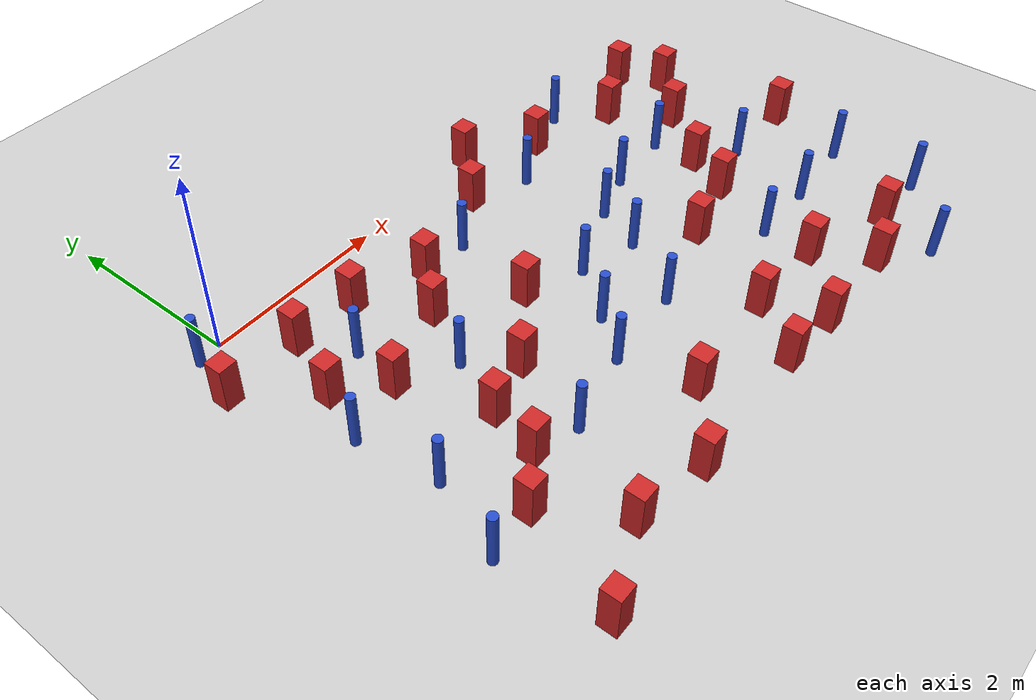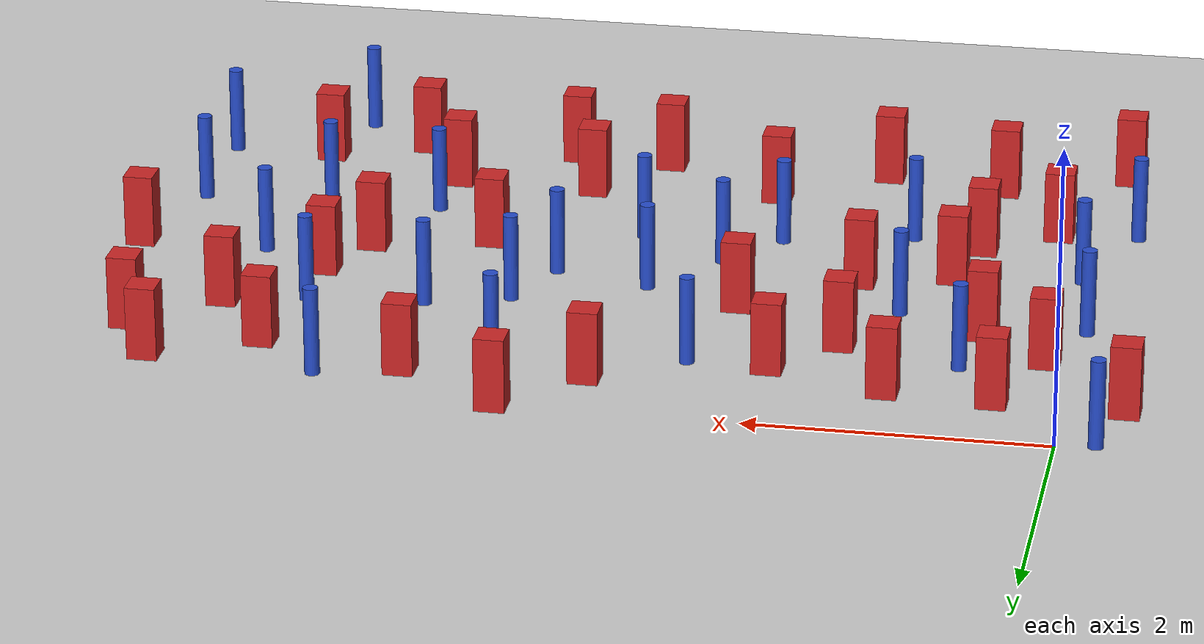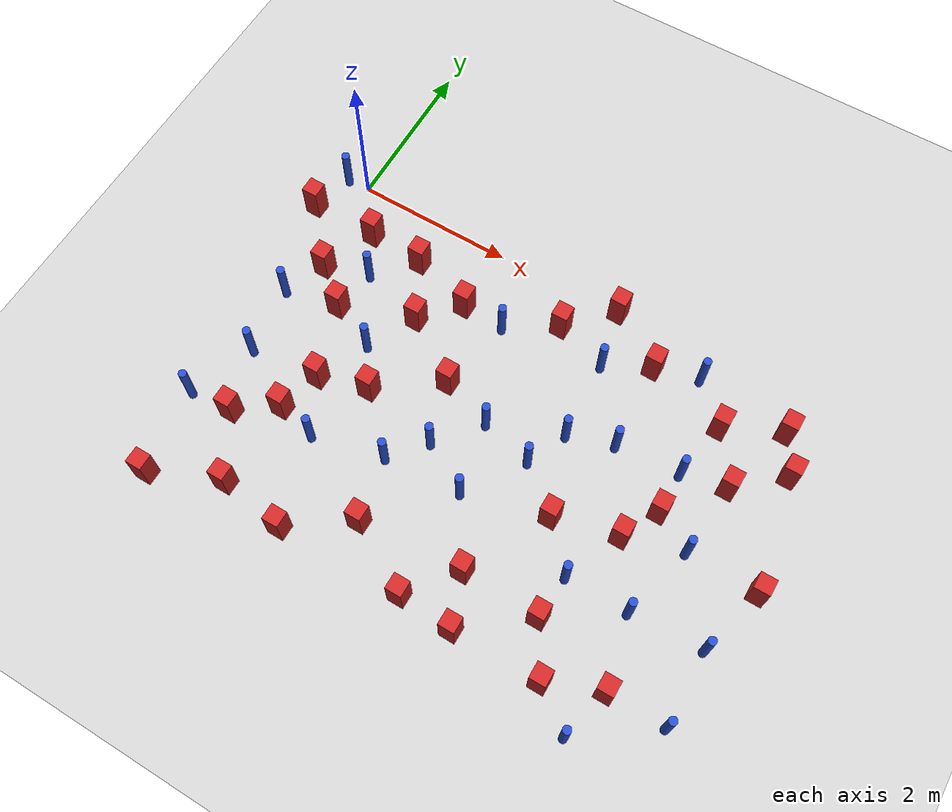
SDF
<sdf version="1.6">
 <world name="default">
  <model name="ground_plane">
   <static>1</static>
   <link name="link">
    <collision name="collision">
     <geometry><plane><normal>0 0 1</normal><size>100 100</size></plane></geometry>
     <surface><friction><ode><mu>100</mu><mu2>50</mu2></ode></friction></surface>
    </collision>
    <visual name="visual">
     <cast_shadows>0</cast_shadows>
     <geometry><plane><normal>0 0 1</normal><size>100 100</size></plane></geometry>
     <material>
      <ambient>1.0 1.0 1.0 1.0</ambient>
      <diffuse>0.8 0.8 0.8 1.0</diffuse>
      <specular>0.01 0.01 0.01 1.000000</specular>
     </material>
    </visual>
   </link>
  </model>
  <model name="NamedLocations">
   <static>true</static>
   <link name="DefaultStart"><pose>8.5 0 0 0 0 3.14</pose></link>
  </model>
  <model name="square_post_obstacle3">
   <static>true</static>
   <pose>4.13522312738 -2.65579902675 8.22691968438e-08 7.2212513382e-06 -7.54495500217e-07 2.29674213826e-05</pose>
   <link name="link">
    <pose>0 0 0.25 0 -0 0</pose>
    <inertial>
     <mass>100</mass>
     <inertia>
      <ixx>0.166667</ixx>
      <ixy>0</ixy>
      <ixz>0</ixz>
      <iyy>0.166667</iyy>
      <iyz>0</iyz>
      <izz>0.166667</izz>
     </inertia>
    </inertial>
    <collision name="collision"><geometry><box><size>.2 .2 .5</size></box></geometry></collision>
    <visual name="visual">
     <geometry><box><size>.2 .2 .5</size></box></geometry>
     <material>
      <script><name>Gazebo/Red</name><uri>file://media/materials/scripts/gazebo.material</uri></script>
     </material>
    </visual>
   </link>
  </model>
  <model name="square_post_obstacle15">
   <static>true</static>
   <pose>3.59028391547 0.0141733033644 8.22691968438e-08 7.22125133819e-06 -7.54495500217e-07 2.29674213826e-05</pose>
   <link name="link">
    <pose>0 0 0.25 0 -0 0</pose>
    <inertial>
     <mass>100</mass>
     <inertia>
      <ixx>0.166667</ixx>
      <ixy>0</ixy>
      <ixz>0</ixz>
      <iyy>0.166667</iyy>
      <iyz>0</iyz>
      <izz>0.166667</izz>
     </inertia>
    </inertial>
    <collision name="collision"><geometry><box><size>.2 .2 .5</size></box></geometry></collision>
    <visual name="visual">
     <geometry><box><size>.2 .2 .5</size></box></geometry>
     <material>
      <script><name>Gazebo/Red</name><uri>file://media/materials/scripts/gazebo.material</uri></script>
     </material>
    </visual>
   </link>
  </model>
  <model name="square_post_obstacle18">
   <static>true</static>
   <pose>0.332091267459 -3.42011661913 8.22691968438e-08 7.22125133819e-06 -7.54495500217e-07 2.29674213826e-05</pose>
   <link name="link">
    <pose>0 0 0.25 0 -0 0</pose>
    <inertial>
     <mass>100</mass>
     <inertia>
      <ixx>0.166667</ixx>
      <ixy>0</ixy>
      <ixz>0</ixz>
      <iyy>0.166667</iyy>
      <iyz>0</iyz>
      <izz>0.166667</izz>
     </inertia>
    </inertial>
    <collision name="collision"><geometry><box><size>.2 .2 .5</size></box></geometry></collision>
    <visual name="visual">
     <geometry><box><size>.2 .2 .5</size></box></geometry>
     <material>
      <script><name>Gazebo/Red</name><uri>file://media/materials/scripts/gazebo.material</uri></script>
     </material>
    </visual>
   </link>
  </model>
  <model name="pole_obstacle11">
   <static>true</static>
   <pose>5.1539246293 -1.47649896476 2.88873142074e-08 -9.90536689445e-09 4.60219948999e-07 -1.20965994956e-07</pose>
   <link name="link">
    <pose>0 0 0.3 0 -0 0</pose>
    <inertial>
     <mass>1</mass>
     <inertia><ixx>0.145833</ixx><ixy>0</ixy><ixz>0</ixz><iyy>0.145833</iyy><iyz>0</iyz><izz>0.125</izz></inertia>
    </inertial>
    <collision name="collision">
     <geometry><cylinder><radius>0.05</radius><length>.6</length></cylinder></geometry>
    </collision>
    <visual name="visual">
     <geometry><cylinder><radius>0.05</radius><length>.6</length></cylinder></geometry>
     <material>
      <script><name>Gazebo/Blue</name><uri>file://media/materials/scripts/gazebo.material</uri></script>
     </material>
    </visual>
   </link>
  </model>
  <model name="pole_obstacle28">
   <static>true</static>
   <pose>3.59871586614 -2.2254511847 2.88873142074e-08 -9.90536690232e-09 4.6021994898e-07 -1.20965994968e-07</pose>
   <link name="link">
    <pose>0 0 0.3 0 -0 0</pose>
    <inertial>
     <mass>1</mass>
     <inertia><ixx>0.145833</ixx><ixy>0</ixy><ixz>0</ixz><iyy>0.145833</iyy><iyz>0</iyz><izz>0.125</izz></inertia>
    </inertial>
    <collision name="collision">
     <geometry><cylinder><radius>0.05</radius><length>.6</length></cylinder></geometry>
    </collision>
    <visual name="visual">
     <geometry><cylinder><radius>0.05</radius><length>.6</length></cylinder></geometry>
     <material>
      <script><name>Gazebo/Blue</name><uri>file://media/materials/scripts/gazebo.material</uri></script>
     </material>
    </visual>
   </link>
  </model>
  <model name="pole_obstacle31">
   <static>true</static>
   <pose>1.30204411857 -3.21546482563 2.88873142074e-08 -9.90536689791e-09 4.6021994899e-07 -1.20965994959e-07</pose>
   <link name="link">
    <pose>0 0 0.3 0 -0 0</pose>
    <inertial>
     <mass>1</mass>
     <inertia><ixx>0.145833</ixx><ixy>0</ixy><ixz>0</ixz><iyy>0.145833</iyy><iyz>0</iyz><izz>0.125</izz></inertia>
    </inertial>
    <collision name="collision">
     <geometry><cylinder><radius>0.05</radius><length>.6</length></cylinder></geometry>
    </collision>
    <visual name="visual">
     <geometry><cylinder><radius>0.05</radius><length>.6</length></cylinder></geometry>
     <material>
      <script><name>Gazebo/Blue</name><uri>file://media/materials/scripts/gazebo.material</uri></script>
     </material>
    </visual>
   </link>
  </model>
  <model name="square_post_obstacle36">
   <static>true</static>
   <pose>5.28592899702 -0.731602783763 8.22691968438e-08 7.2212513382e-06 -7.54495500217e-07 2.29674213826e-05</pose>
   <link name="link">
    <pose>0 0 0.25 0 -0 0</pose>
    <inertial>
     <mass>100</mass>
     <inertia>
      <ixx>0.166667</ixx>
      <ixy>0</ixy>
      <ixz>0</ixz>
      <iyy>0.166667</iyy>
      <iyz>0</iyz>
      <izz>0.166667</izz>
     </inertia>
    </inertial>
    <collision name="collision"><geometry><box><size>.2 .2 .5</size></box></geometry></collision>
    <visual name="visual">
     <geometry><box><size>.2 .2 .5</size></box></geometry>
     <material>
      <script><name>Gazebo/Red</name><uri>file://media/materials/scripts/gazebo.material</uri></script>
     </material>
    </visual>
   </link>
  </model>
  <model name="square_post_obstacle44">
   <static>true</static>
   <pose>3.83859760371 -4.29896919838 8.22691968438e-08 7.2212513382e-06 -7.54495500217e-07 2.29674213826e-05</pose>
   <link name="link">
    <pose>0 0 0.25 0 -0 0</pose>
    <inertial>
     <mass>100</mass>
     <inertia>
      <ixx>0.166667</ixx>
      <ixy>0</ixy>
      <ixz>0</ixz>
      <iyy>0.166667</iyy>
      <iyz>0</iyz>
      <izz>0.166667</izz>
     </inertia>
    </inertial>
    <collision name="collision"><geometry><box><size>.2 .2 .5</size></box></geometry></collision>
    <visual name="visual">
     <geometry><box><size>.2 .2 .5</size></box></geometry>
     <material>
      <script><name>Gazebo/Red</name><uri>file://media/materials/scripts/gazebo.material</uri></script>
     </material>
    </visual>
   </link>
  </model>
  <model name="square_post_obstacle46">
   <static>true</static>
   <pose>2.33652234879 -3.78186999209 8.22691968438e-08 7.2212513382e-06 -7.54495500217e-07 2.29674213826e-05</pose>
   <link name="link">
    <pose>0 0 0.25 0 -0 0</pose>
    <inertial>
     <mass>100</mass>
     <inertia>
      <ixx>0.166667</ixx>
      <ixy>0</ixy>
      <ixz>0</ixz>
      <iyy>0.166667</iyy>
      <iyz>0</iyz>
      <izz>0.166667</izz>
     </inertia>
    </inertial>
    <collision name="collision"><geometry><box><size>.2 .2 .5</size></box></geometry></collision>
    <visual name="visual">
     <geometry><box><size>.2 .2 .5</size></box></geometry>
     <material>
      <script><name>Gazebo/Red</name><uri>file://media/materials/scripts/gazebo.material</uri></script>
     </material>
    </visual>
   </link>
  </model>
  <model name="square_post_obstacle47">
   <static>true</static>
   <pose>1.61409860061 -4.29518466606 8.22691968438e-08 7.2212513382e-06 -7.54495500217e-07 2.29674213826e-05</pose>
   <link name="link">
    <pose>0 0 0.25 0 -0 0</pose>
    <inertial>
     <mass>100</mass>
     <inertia>
      <ixx>0.166667</ixx>
      <ixy>0</ixy>
      <ixz>0</ixz>
      <iyy>0.166667</iyy>
      <iyz>0</iyz>
      <izz>0.166667</izz>
     </inertia>
    </inertial>
    <collision name="collision"><geometry><box><size>.2 .2 .5</size></box></geometry></collision>
    <visual name="visual">
     <geometry><box><size>.2 .2 .5</size></box></geometry>
     <material>
      <script><name>Gazebo/Red</name><uri>file://media/materials/scripts/gazebo.material</uri></script>
     </material>
    </visual>
   </link>
  </model>
  <model name="pole_obstacle49">
   <static>true</static>
   <pose>0.736741072179 -1.09115977994 2.88873142074e-08 -9.90536689855e-09 4.60219948989e-07 -1.20965994962e-07</pose>
   <link name="link">
    <pose>0 0 0.3 0 -0 0</pose>
    <inertial>
     <mass>1</mass>
     <inertia><ixx>0.145833</ixx><ixy>0</ixy><ixz>0</ixz><iyy>0.145833</iyy><iyz>0</iyz><izz>0.125</izz></inertia>
    </inertial>
    <collision name="collision">
     <geometry><cylinder><radius>0.05</radius><length>.6</length></cylinder></geometry>
    </collision>
    <visual name="visual">
     <geometry><cylinder><radius>0.05</radius><length>.6</length></cylinder></geometry>
     <material>
      <script><name>Gazebo/Blue</name><uri>file://media/materials/scripts/gazebo.material</uri></script>
     </material>
    </visual>
   </link>
  </model>
  <model name="square_post_obstacle50">
   <static>true</static>
   <pose>4.91427063715 -2.45755925299 8.22691968438e-08 7.2212513382e-06 -7.54495500217e-07 2.29674213826e-05</pose>
   <link name="link">
    <pose>0 0 0.25 0 -0 0</pose>
    <inertial>
     <mass>100</mass>
     <inertia>
      <ixx>0.166667</ixx>
      <ixy>0</ixy>
      <ixz>0</ixz>
      <iyy>0.166667</iyy>
      <iyz>0</iyz>
      <izz>0.166667</izz>
     </inertia>
    </inertial>
    <collision name="collision"><geometry><box><size>.2 .2 .5</size></box></geometry></collision>
    <visual name="visual">
     <geometry><box><size>.2 .2 .5</size></box></geometry>
     <material>
      <script><name>Gazebo/Red</name><uri>file://media/materials/scripts/gazebo.material</uri></script>
     </material>
    </visual>
   </link>
  </model>
  <model name="pole_obstacle55">
   <static>true</static>
   <pose>6.26999977133 -4.03999626203 2.88873142074e-08 -9.90536690819e-09 4.60219948966e-07 -1.20965994975e-07</pose>
   <link name="link">
    <pose>0 0 0.3 0 -0 0</pose>
    <inertial>
     <mass>1</mass>
     <inertia><ixx>0.145833</ixx><ixy>0</ixy><ixz>0</ixz><iyy>0.145833</iyy><iyz>0</iyz><izz>0.125</izz></inertia>
    </inertial>
    <collision name="collision">
     <geometry><cylinder><radius>0.05</radius><length>.6</length></cylinder></geometry>
    </collision>
    <visual name="visual">
     <geometry><cylinder><radius>0.05</radius><length>.6</length></cylinder></geometry>
     <material>
      <script><name>Gazebo/Blue</name><uri>file://media/materials/scripts/gazebo.material</uri></script>
     </material>
    </visual>
   </link>
  </model>
  <model name="square_post_obstacle58">
   <static>true</static>
   <pose>1.95049181299 -0.862214484759 8.22691968438e-08 7.2212513382e-06 -7.54495500217e-07 2.29674213826e-05</pose>
   <link name="link">
    <pose>0 0 0.25 0 -0 0</pose>
    <inertial>
     <mass>100</mass>
     <inertia>
      <ixx>0.166667</ixx>
      <ixy>0</ixy>
      <ixz>0</ixz>
      <iyy>0.166667</iyy>
      <iyz>0</iyz>
      <izz>0.166667</izz>
     </inertia>
    </inertial>
    <collision name="collision"><geometry><box><size>.2 .2 .5</size></box></geometry></collision>
    <visual name="visual">
     <geometry><box><size>.2 .2 .5</size></box></geometry>
     <material>
      <script><name>Gazebo/Red</name><uri>file://media/materials/scripts/gazebo.material</uri></script>
     </material>
    </visual>
   </link>
  </model>
  <model name="pole_obstacle60">
   <static>true</static>
   <pose>0.0974385137581 -2.65451899456 2.88873142074e-08 -9.90536689907e-09 4.60219948988e-07 -1.20965994961e-07</pose>
   <link name="link">
    <pose>0 0 0.3 0 -0 0</pose>
    <inertial>
     <mass>1</mass>
     <inertia><ixx>0.145833</ixx><ixy>0</ixy><ixz>0</ixz><iyy>0.145833</iyy><iyz>0</iyz><izz>0.125</izz></inertia>
    </inertial>
    <collision name="collision">
     <geometry><cylinder><radius>0.05</radius><length>.6</length></cylinder></geometry>
    </collision>
    <visual name="visual">
     <geometry><cylinder><radius>0.05</radius><length>.6</length></cylinder></geometry>
     <material>
      <script><name>Gazebo/Blue</name><uri>file://media/materials/scripts/gazebo.material</uri></script>
     </material>
    </visual>
   </link>
  </model>
  <model name="square_post_obstacle64">
   <static>true</static>
   <pose>0.789387973491 -4.16631128242 8.22691968438e-08 7.22125133819e-06 -7.54495500217e-07 2.29674213826e-05</pose>
   <link name="link">
    <pose>0 0 0.25 0 -0 0</pose>
    <inertial>
     <mass>100</mass>
     <inertia>
      <ixx>0.166667</ixx>
      <ixy>0</ixy>
      <ixz>0</ixz>
      <iyy>0.166667</iyy>
      <iyz>0</iyz>
      <izz>0.166667</izz>
     </inertia>
    </inertial>
    <collision name="collision"><geometry><box><size>.2 .2 .5</size></box></geometry></collision>
    <visual name="visual">
     <geometry><box><size>.2 .2 .5</size></box></geometry>
     <material>
      <script><name>Gazebo/Red</name><uri>file://media/materials/scripts/gazebo.material</uri></script>
     </material>
    </visual>
   </link>
  </model>
  <model name="pole_obstacle63">
   <static>true</static>
   <pose>4.36748059141 -1.53994922033 2.88873142074e-08 -9.90536689445e-09 4.60219948999e-07 -1.20965994956e-07</pose>
   <link name="link">
    <pose>0 0 0.3 0 -0 0</pose>
    <inertial>
     <mass>1</mass>
     <inertia><ixx>0.145833</ixx><ixy>0</ixy><ixz>0</ixz><iyy>0.145833</iyy><iyz>0</iyz><izz>0.125</izz></inertia>
    </inertial>
    <collision name="collision">
     <geometry><cylinder><radius>0.05</radius><length>.6</length></cylinder></geometry>
    </collision>
    <visual name="visual">
     <geometry><cylinder><radius>0.05</radius><length>.6</length></cylinder></geometry>
     <material>
      <script><name>Gazebo/Blue</name><uri>file://media/materials/scripts/gazebo.material</uri></script>
     </material>
    </visual>
   </link>
  </model>
  <model name="square_post_obstacle69">
   <static>true</static>
   <pose>0.463410066052 -0.579139525449 8.22691968438e-08 7.2212513382e-06 -7.54495500217e-07 2.29674213826e-05</pose>
   <link name="link">
    <pose>0 0 0.25 0 -0 0</pose>
    <inertial>
     <mass>100</mass>
     <inertia>
      <ixx>0.166667</ixx>
      <ixy>0</ixy>
      <ixz>0</ixz>
      <iyy>0.166667</iyy>
      <iyz>0</iyz>
      <izz>0.166667</izz>
     </inertia>
    </inertial>
    <collision name="collision"><geometry><box><size>.2 .2 .5</size></box></geometry></collision>
    <visual name="visual">
     <geometry><box><size>.2 .2 .5</size></box></geometry>
     <material>
      <script><name>Gazebo/Red</name><uri>file://media/materials/scripts/gazebo.material</uri></script>
     </material>
    </visual>
   </link>
  </model>
  <model name="square_post_obstacle71">
   <static>true</static>
   <pose>4.57361484724 -3.7049282111 8.22691968438e-08 7.2212513382e-06 -7.54495500217e-07 2.29674213826e-05</pose>
   <link name="link">
    <pose>0 0 0.25 0 -0 0</pose>
    <inertial>
     <mass>100</mass>
     <inertia>
      <ixx>0.166667</ixx>
      <ixy>0</ixy>
      <ixz>0</ixz>
      <iyy>0.166667</iyy>
      <iyz>0</iyz>
      <izz>0.166667</izz>
     </inertia>
    </inertial>
    <collision name="collision"><geometry><box><size>.2 .2 .5</size></box></geometry></collision>
    <visual name="visual">
     <geometry><box><size>.2 .2 .5</size></box></geometry>
     <material>
      <script><name>Gazebo/Red</name><uri>file://media/materials/scripts/gazebo.material</uri></script>
     </material>
    </visual>
   </link>
  </model>
  <model name="pole_obstacle68">
   <static>true</static>
   <pose>3.74584057635 -0.733672223118 2.88873142074e-08 -9.90536689285e-09 4.60219949002e-07 -1.20965994953e-07</pose>
   <link name="link">
    <pose>0 0 0.3 0 -0 0</pose>
    <inertial>
     <mass>1</mass>
     <inertia><ixx>0.145833</ixx><ixy>0</ixy><ixz>0</ixz><iyy>0.145833</iyy><iyz>0</iyz><izz>0.125</izz></inertia>
    </inertial>
    <collision name="collision">
     <geometry><cylinder><radius>0.05</radius><length>.6</length></cylinder></geometry>
    </collision>
    <visual name="visual">
     <geometry><cylinder><radius>0.05</radius><length>.6</length></cylinder></geometry>
     <material>
      <script><name>Gazebo/Blue</name><uri>file://media/materials/scripts/gazebo.material</uri></script>
     </material>
    </visual>
   </link>
  </model>
  <model name="square_post_obstacle72">
   <static>true</static>
   <pose>1.5594632655 -2.37701082443 8.22691968438e-08 7.2212513382e-06 -7.54495500217e-07 2.29674213826e-05</pose>
   <link name="link">
    <pose>0 0 0.25 0 -0 0</pose>
    <inertial>
     <mass>100</mass>
     <inertia>
      <ixx>0.166667</ixx>
      <ixy>0</ixy>
      <ixz>0</ixz>
      <iyy>0.166667</iyy>
      <iyz>0</iyz>
      <izz>0.166667</izz>
     </inertia>
    </inertial>
    <collision name="collision"><geometry><box><size>.2 .2 .5</size></box></geometry></collision>
    <visual name="visual">
     <geometry><box><size>.2 .2 .5</size></box></geometry>
     <material>
      <script><name>Gazebo/Red</name><uri>file://media/materials/scripts/gazebo.material</uri></script>
     </material>
    </visual>
   </link>
  </model>
  <model name="pole_obstacle70">
   <static>true</static>
   <pose>5.40621550223 -4.65525916743 2.88873142074e-08 -9.90536690842e-09 4.60219948965e-07 -1.20965994976e-07</pose>
   <link name="link">
    <pose>0 0 0.3 0 -0 0</pose>
    <inertial>
     <mass>1</mass>
     <inertia><ixx>0.145833</ixx><ixy>0</ixy><ixz>0</ixz><iyy>0.145833</iyy><iyz>0</iyz><izz>0.125</izz></inertia>
    </inertial>
    <collision name="collision">
     <geometry><cylinder><radius>0.05</radius><length>.6</length></cylinder></geometry>
    </collision>
    <visual name="visual">
     <geometry><cylinder><radius>0.05</radius><length>.6</length></cylinder></geometry>
     <material>
      <script><name>Gazebo/Blue</name><uri>file://media/materials/scripts/gazebo.material</uri></script>
     </material>
    </visual>
   </link>
  </model>
  <model name="pole_obstacle86">
   <static>true</static>
   <pose>1.23219059961 -1.91712161186 2.88873142074e-08 -9.90536689672e-09 4.60219948993e-07 -1.20965994959e-07</pose>
   <link name="link">
    <pose>0 0 0.3 0 -0 0</pose>
    <inertial>
     <mass>1</mass>
     <inertia><ixx>0.145833</ixx><ixy>0</ixy><ixz>0</ixz><iyy>0.145833</iyy><iyz>0</iyz><izz>0.125</izz></inertia>
    </inertial>
    <collision name="collision">
     <geometry><cylinder><radius>0.05</radius><length>.6</length></cylinder></geometry>
    </collision>
    <visual name="visual">
     <geometry><cylinder><radius>0.05</radius><length>.6</length></cylinder></geometry>
     <material>
      <script><name>Gazebo/Blue</name><uri>file://media/materials/scripts/gazebo.material</uri></script>
     </material>
    </visual>
   </link>
  </model>
  <model name="square_post_obstacle82">
   <static>true</static>
   <pose>5.97383376736 -0.394830166997 8.22691968438e-08 7.2212513382e-06 -7.54495500217e-07 2.29674213826e-05</pose>
   <link name="link">
    <pose>0 0 0.25 0 -0 0</pose>
    <inertial>
     <mass>100</mass>
     <inertia>
      <ixx>0.166667</ixx>
      <ixy>0</ixy>
      <ixz>0</ixz>
      <iyy>0.166667</iyy>
      <iyz>0</iyz>
      <izz>0.166667</izz>
     </inertia>
    </inertial>
    <collision name="collision"><geometry><box><size>.2 .2 .5</size></box></geometry></collision>
    <visual name="visual">
     <geometry><box><size>.2 .2 .5</size></box></geometry>
     <material>
      <script><name>Gazebo/Red</name><uri>file://media/materials/scripts/gazebo.material</uri></script>
     </material>
    </visual>
   </link>
  </model>
  <model name="pole_obstacle92">
   <static>true</static>
   <pose>3.13015871847 -2.93727743271 2.88873142074e-08 -9.90536690232e-09 4.6021994898e-07 -1.20965994968e-07</pose>
   <link name="link">
    <pose>0 0 0.3 0 -0 0</pose>
    <inertial>
     <mass>1</mass>
     <inertia><ixx>0.145833</ixx><ixy>0</ixy><ixz>0</ixz><iyy>0.145833</iyy><iyz>0</iyz><izz>0.125</izz></inertia>
    </inertial>
    <collision name="collision">
     <geometry><cylinder><radius>0.05</radius><length>.6</length></cylinder></geometry>
    </collision>
    <visual name="visual">
     <geometry><cylinder><radius>0.05</radius><length>.6</length></cylinder></geometry>
     <material>
      <script><name>Gazebo/Blue</name><uri>file://media/materials/scripts/gazebo.material</uri></script>
     </material>
    </visual>
   </link>
  </model>
  <model name="pole_obstacle97">
   <static>true</static>
   <pose>-0.0226844994251 -1.79330081845 2.88873142074e-08 -9.90536690152e-09 4.60219948982e-07 -1.20965994964e-07</pose>
   <link name="link">
    <pose>0 0 0.3 0 -0 0</pose>
    <inertial>
     <mass>1</mass>
     <inertia><ixx>0.145833</ixx><ixy>0</ixy><ixz>0</ixz><iyy>0.145833</iyy><iyz>0</iyz><izz>0.125</izz></inertia>
    </inertial>
    <collision name="collision">
     <geometry><cylinder><radius>0.05</radius><length>.6</length></cylinder></geometry>
    </collision>
    <visual name="visual">
     <geometry><cylinder><radius>0.05</radius><length>.6</length></cylinder></geometry>
     <material>
      <script><name>Gazebo/Blue</name><uri>file://media/materials/scripts/gazebo.material</uri></script>
     </material>
    </visual>
   </link>
  </model>
  <model name="square_post_obstacle91">
   <static>true</static>
   <pose>-0.388251314456 -0.574025814259 8.22691968438e-08 7.2212513382e-06 -7.54495500217e-07 2.29674213826e-05</pose>
   <link name="link">
    <pose>0 0 0.25 0 -0 0</pose>
    <inertial>
     <mass>100</mass>
     <inertia>
      <ixx>0.166667</ixx>
      <ixy>0</ixy>
      <ixz>0</ixz>
      <iyy>0.166667</iyy>
      <iyz>0</iyz>
      <izz>0.166667</izz>
     </inertia>
    </inertial>
    <collision name="collision"><geometry><box><size>.2 .2 .5</size></box></geometry></collision>
    <visual name="visual">
     <geometry><box><size>.2 .2 .5</size></box></geometry>
     <material>
      <script><name>Gazebo/Red</name><uri>file://media/materials/scripts/gazebo.material</uri></script>
     </material>
    </visual>
   </link>
  </model>
  <model name="square_post_obstacle92">
   <static>true</static>
   <pose>0.197331601672 -1.26277803613 8.22691968438e-08 7.2212513382e-06 -7.54495500217e-07 2.29674213826e-05</pose>
   <link name="link">
    <pose>0 0 0.25 0 -0 0</pose>
    <inertial>
     <mass>100</mass>
     <inertia>
      <ixx>0.166667</ixx>
      <ixy>0</ixy>
      <ixz>0</ixz>
      <iyy>0.166667</iyy>
      <iyz>0</iyz>
      <izz>0.166667</izz>
     </inertia>
    </inertial>
    <collision name="collision"><geometry><box><size>.2 .2 .5</size></box></geometry></collision>
    <visual name="visual">
     <geometry><box><size>.2 .2 .5</size></box></geometry>
     <material>
      <script><name>Gazebo/Red</name><uri>file://media/materials/scripts/gazebo.material</uri></script>
     </material>
    </visual>
   </link>
  </model>
  <model name="square_post_obstacle103">
   <static>true</static>
   <pose>-0.053666954821 -4.52414792182 8.22691968438e-08 7.2212513382e-06 -7.54495500217e-07 2.29674213826e-05</pose>
   <link name="link">
    <pose>0 0 0.25 0 -0 0</pose>
    <inertial>
     <mass>100</mass>
     <inertia>
      <ixx>0.166667</ixx>
      <ixy>0</ixy>
      <ixz>0</ixz>
      <iyy>0.166667</iyy>
      <iyz>0</iyz>
      <izz>0.166667</izz>
     </inertia>
    </inertial>
    <collision name="collision"><geometry><box><size>.2 .2 .5</size></box></geometry></collision>
    <visual name="visual">
     <geometry><box><size>.2 .2 .5</size></box></geometry>
     <material>
      <script><name>Gazebo/Red</name><uri>file://media/materials/scripts/gazebo.material</uri></script>
     </material>
    </visual>
   </link>
  </model>
  <model name="square_post_obstacle110">
   <static>true</static>
   <pose>6.48930885036 -2.26585989702 8.22691968438e-08 7.2212513382e-06 -7.54495500217e-07 2.29674213826e-05</pose>
   <link name="link">
    <pose>0 0 0.25 0 -0 0</pose>
    <inertial>
     <mass>100</mass>
     <inertia>
      <ixx>0.166667</ixx>
      <ixy>0</ixy>
      <ixz>0</ixz>
      <iyy>0.166667</iyy>
      <iyz>0</iyz>
      <izz>0.166667</izz>
     </inertia>
    </inertial>
    <collision name="collision"><geometry><box><size>.2 .2 .5</size></box></geometry></collision>
    <visual name="visual">
     <geometry><box><size>.2 .2 .5</size></box></geometry>
     <material>
      <script><name>Gazebo/Red</name><uri>file://media/materials/scripts/gazebo.material</uri></script>
     </material>
    </visual>
   </link>
  </model>
  <model name="pole_obstacle121">
   <static>true</static>
   <pose>5.37866802842 -3.17992027958 2.88873142074e-08 -9.90536690245e-09 4.6021994898e-07 -1.20965994966e-07</pose>
   <link name="link">
    <pose>0 0 0.3 0 -0 0</pose>
    <inertial>
     <mass>1</mass>
     <inertia><ixx>0.145833</ixx><ixy>0</ixy><ixz>0</ixz><iyy>0.145833</iyy><iyz>0</iyz><izz>0.125</izz></inertia>
    </inertial>
    <collision name="collision">
     <geometry><cylinder><radius>0.05</radius><length>.6</length></cylinder></geometry>
    </collision>
    <visual name="visual">
     <geometry><cylinder><radius>0.05</radius><length>.6</length></cylinder></geometry>
     <material>
      <script><name>Gazebo/Blue</name><uri>file://media/materials/scripts/gazebo.material</uri></script>
     </material>
    </visual>
   </link>
  </model>
  <model name="square_post_obstacle114">
   <static>true</static>
   <pose>0.646837217614 -1.64152318423 8.22691968438e-08 7.2212513382e-06 -7.54495500217e-07 2.29674213826e-05</pose>
   <link name="link">
    <pose>0 0 0.25 0 -0 0</pose>
    <inertial>
     <mass>100</mass>
     <inertia>
      <ixx>0.166667</ixx>
      <ixy>0</ixy>
      <ixz>0</ixz>
      <iyy>0.166667</iyy>
      <iyz>0</iyz>
      <izz>0.166667</izz>
     </inertia>
    </inertial>
    <collision name="collision"><geometry><box><size>.2 .2 .5</size></box></geometry></collision>
    <visual name="visual">
     <geometry><box><size>.2 .2 .5</size></box></geometry>
     <material>
      <script><name>Gazebo/Red</name><uri>file://media/materials/scripts/gazebo.material</uri></script>
     </material>
    </visual>
   </link>
  </model>
  <model name="pole_obstacle131">
   <static>true</static>
   <pose>2.17916036868 -3.01405115687 2.88873142074e-08 -9.90536690232e-09 4.6021994898e-07 -1.20965994968e-07</pose>
   <link name="link">
    <pose>0 0 0.3 0 -0 0</pose>
    <inertial>
     <mass>1</mass>
     <inertia><ixx>0.145833</ixx><ixy>0</ixy><ixz>0</ixz><iyy>0.145833</iyy><iyz>0</iyz><izz>0.125</izz></inertia>
    </inertial>
    <collision name="collision">
     <geometry><cylinder><radius>0.05</radius><length>.6</length></cylinder></geometry>
    </collision>
    <visual name="visual">
     <geometry><cylinder><radius>0.05</radius><length>.6</length></cylinder></geometry>
     <material>
      <script><name>Gazebo/Blue</name><uri>file://media/materials/scripts/gazebo.material</uri></script>
     </material>
    </visual>
   </link>
  </model>
  <model name="pole_obstacle135">
   <static>true</static>
   <pose>-0.205072689119 -3.46871111581 2.88873142074e-08 -9.90536692547e-09 4.60219948925e-07 -1.2096599499e-07</pose>
   <link name="link">
    <pose>0 0 0.3 0 -0 0</pose>
    <inertial>
     <mass>1</mass>
     <inertia><ixx>0.145833</ixx><ixy>0</ixy><ixz>0</ixz><iyy>0.145833</iyy><iyz>0</iyz><izz>0.125</izz></inertia>
    </inertial>
    <collision name="collision">
     <geometry><cylinder><radius>0.05</radius><length>.6</length></cylinder></geometry>
    </collision>
    <visual name="visual">
     <geometry><cylinder><radius>0.05</radius><length>.6</length></cylinder></geometry>
     <material>
      <script><name>Gazebo/Blue</name><uri>file://media/materials/scripts/gazebo.material</uri></script>
     </material>
    </visual>
   </link>
  </model>
  <model name="square_post_obstacle118">
   <static>true</static>
   <pose>3.08702893572 -0.509921609257 8.22691968438e-08 7.2212513382e-06 -7.54495500217e-07 2.29674213826e-05</pose>
   <link name="link">
    <pose>0 0 0.25 0 -0 0</pose>
    <inertial>
     <mass>100</mass>
     <inertia>
      <ixx>0.166667</ixx>
      <ixy>0</ixy>
      <ixz>0</ixz>
      <iyy>0.166667</iyy>
      <iyz>0</iyz>
      <izz>0.166667</izz>
     </inertia>
    </inertial>
    <collision name="collision"><geometry><box><size>.2 .2 .5</size></box></geometry></collision>
    <visual name="visual">
     <geometry><box><size>.2 .2 .5</size></box></geometry>
     <material>
      <script><name>Gazebo/Red</name><uri>file://media/materials/scripts/gazebo.material</uri></script>
     </material>
    </visual>
   </link>
  </model>
  <model name="pole_obstacle137">
   <static>true</static>
   <pose>5.61924350365 -2.25988604688 2.88873142074e-08 -9.90536690245e-09 4.6021994898e-07 -1.20965994966e-07</pose>
   <link name="link">
    <pose>0 0 0.3 0 -0 0</pose>
    <inertial>
     <mass>1</mass>
     <inertia><ixx>0.145833</ixx><ixy>0</ixy><ixz>0</ixz><iyy>0.145833</iyy><iyz>0</iyz><izz>0.125</izz></inertia>
    </inertial>
    <collision name="collision">
     <geometry><cylinder><radius>0.05</radius><length>.6</length></cylinder></geometry>
    </collision>
    <visual name="visual">
     <geometry><cylinder><radius>0.05</radius><length>.6</length></cylinder></geometry>
     <material>
      <script><name>Gazebo/Blue</name><uri>file://media/materials/scripts/gazebo.material</uri></script>
     </material>
    </visual>
   </link>
  </model>
  <model name="square_post_obstacle131">
   <static>true</static>
   <pose>4.28729180034 -0.439371883387 8.22691968438e-08 7.2212513382e-06 -7.54495500217e-07 2.29674213826e-05</pose>
   <link name="link">
    <pose>0 0 0.25 0 -0 0</pose>
    <inertial>
     <mass>100</mass>
     <inertia>
      <ixx>0.166667</ixx>
      <ixy>0</ixy>
      <ixz>0</ixz>
      <iyy>0.166667</iyy>
      <iyz>0</iyz>
      <izz>0.166667</izz>
     </inertia>
    </inertial>
    <collision name="collision"><geometry><box><size>.2 .2 .5</size></box></geometry></collision>
    <visual name="visual">
     <geometry><box><size>.2 .2 .5</size></box></geometry>
     <material>
      <script><name>Gazebo/Red</name><uri>file://media/materials/scripts/gazebo.material</uri></script>
     </material>
    </visual>
   </link>
  </model>
  <model name="pole_obstacle143">
   <static>true</static>
   <pose>4.61177263574 -3.18109168101 2.88873142074e-08 -9.90536690245e-09 4.6021994898e-07 -1.20965994966e-07</pose>
   <link name="link">
    <pose>0 0 0.3 0 -0 0</pose>
    <inertial>
     <mass>1</mass>
     <inertia><ixx>0.145833</ixx><ixy>0</ixy><ixz>0</ixz><iyy>0.145833</iyy><iyz>0</iyz><izz>0.125</izz></inertia>
    </inertial>
    <collision name="collision">
     <geometry><cylinder><radius>0.05</radius><length>.6</length></cylinder></geometry>
    </collision>
    <visual name="visual">
     <geometry><cylinder><radius>0.05</radius><length>.6</length></cylinder></geometry>
     <material>
      <script><name>Gazebo/Blue</name><uri>file://media/materials/scripts/gazebo.material</uri></script>
     </material>
    </visual>
   </link>
  </model>
  <model name="square_post_obstacle134">
   <static>true</static>
   <pose>0.956268620171 -2.54991933352 8.22691968438e-08 7.2212513382e-06 -7.54495500217e-07 2.29674213826e-05</pose>
   <link name="link">
    <pose>0 0 0.25 0 -0 0</pose>
    <inertial>
     <mass>100</mass>
     <inertia>
      <ixx>0.166667</ixx>
      <ixy>0</ixy>
      <ixz>0</ixz>
      <iyy>0.166667</iyy>
      <iyz>0</iyz>
      <izz>0.166667</izz>
     </inertia>
    </inertial>
    <collision name="collision"><geometry><box><size>.2 .2 .5</size></box></geometry></collision>
    <visual name="visual">
     <geometry><box><size>.2 .2 .5</size></box></geometry>
     <material>
      <script><name>Gazebo/Red</name><uri>file://media/materials/scripts/gazebo.material</uri></script>
     </material>
    </visual>
   </link>
  </model>
  <model name="square_post_obstacle147">
   <static>true</static>
   <pose>4.91835032034 -4.2891862002 8.22691968438e-08 7.22125133819e-06 -7.54495500217e-07 2.29674213826e-05</pose>
   <link name="link">
    <pose>0 0 0.25 0 -0 0</pose>
    <inertial>
     <mass>100</mass>
     <inertia>
      <ixx>0.166667</ixx>
      <ixy>0</ixy>
      <ixz>0</ixz>
      <iyy>0.166667</iyy>
      <iyz>0</iyz>
      <izz>0.166667</izz>
     </inertia>
    </inertial>
    <collision name="collision"><geometry><box><size>.2 .2 .5</size></box></geometry></collision>
    <visual name="visual">
     <geometry><box><size>.2 .2 .5</size></box></geometry>
     <material>
      <script><name>Gazebo/Red</name><uri>file://media/materials/scripts/gazebo.material</uri></script>
     </material>
    </visual>
   </link>
  </model>
  <model name="square_post_obstacle151">
   <static>true</static>
   <pose>1.54726333375 -1.31202369273 8.22691968438e-08 7.2212513382e-06 -7.54495500217e-07 2.29674213826e-05</pose>
   <link name="link">
    <pose>0 0 0.25 0 -0 0</pose>
    <inertial>
     <mass>100</mass>
     <inertia>
      <ixx>0.166667</ixx>
      <ixy>0</ixy>
      <ixz>0</ixz>
      <iyy>0.166667</iyy>
      <iyz>0</iyz>
      <izz>0.166667</izz>
     </inertia>
    </inertial>
    <collision name="collision"><geometry><box><size>.2 .2 .5</size></box></geometry></collision>
    <visual name="visual">
     <geometry><box><size>.2 .2 .5</size></box></geometry>
     <material>
      <script><name>Gazebo/Red</name><uri>file://media/materials/scripts/gazebo.material</uri></script>
     </material>
    </visual>
   </link>
  </model>
  <model name="pole_obstacle164">
   <static>true</static>
   <pose>3.81458418494 -1.71975040919 2.88873142074e-08 -9.90536689395e-09 4.60219949e-07 -1.20965994953e-07</pose>
   <link name="link">
    <pose>0 0 0.3 0 -0 0</pose>
    <inertial>
     <mass>1</mass>
     <inertia><ixx>0.145833</ixx><ixy>0</ixy><ixz>0</ixz><iyy>0.145833</iyy><iyz>0</iyz><izz>0.125</izz></inertia>
    </inertial>
    <collision name="collision">
     <geometry><cylinder><radius>0.05</radius><length>.6</length></cylinder></geometry>
    </collision>
    <visual name="visual">
     <geometry><cylinder><radius>0.05</radius><length>.6</length></cylinder></geometry>
     <material>
      <script><name>Gazebo/Blue</name><uri>file://media/materials/scripts/gazebo.material</uri></script>
     </material>
    </visual>
   </link>
  </model>
  <model name="pole_obstacle169">
   <static>true</static>
   <pose>2.53024942959 -2.59004932423 2.88873142074e-08 -9.90536690232e-09 4.6021994898e-07 -1.20965994968e-07</pose>
   <link name="link">
    <pose>0 0 0.3 0 -0 0</pose>
    <inertial>
     <mass>1</mass>
     <inertia><ixx>0.145833</ixx><ixy>0</ixy><ixz>0</ixz><iyy>0.145833</iyy><iyz>0</iyz><izz>0.125</izz></inertia>
    </inertial>
    <collision name="collision">
     <geometry><cylinder><radius>0.05</radius><length>.6</length></cylinder></geometry>
    </collision>
    <visual name="visual">
     <geometry><cylinder><radius>0.05</radius><length>.6</length></cylinder></geometry>
     <material>
      <script><name>Gazebo/Blue</name><uri>file://media/materials/scripts/gazebo.material</uri></script>
     </material>
    </visual>
   </link>
  </model>
  <model name="pole_obstacle173">
   <static>true</static>
   <pose>-0.255165368197 -0.0386571464127 2.88873142074e-08 -9.9053669019e-09 4.60219948981e-07 -1.20965994966e-07</pose>
   <link name="link">
    <pose>0 0 0.3 0 -0 0</pose>
    <inertial>
     <mass>1</mass>
     <inertia><ixx>0.145833</ixx><ixy>0</ixy><ixz>0</ixz><iyy>0.145833</iyy><iyz>0</iyz><izz>0.125</izz></inertia>
    </inertial>
    <collision name="collision">
     <geometry><cylinder><radius>0.05</radius><length>.6</length></cylinder></geometry>
    </collision>
    <visual name="visual">
     <geometry><cylinder><radius>0.05</radius><length>.6</length></cylinder></geometry>
     <material>
      <script><name>Gazebo/Blue</name><uri>file://media/materials/scripts/gazebo.material</uri></script>
     </material>
    </visual>
   </link>
  </model>
  <model name="pole_obstacle179">
   <static>true</static>
   <pose>2.48656556403 -0.889929996083 2.88873142074e-08 -9.90536689285e-09 4.60219949002e-07 -1.20965994953e-07</pose>
   <link name="link">
    <pose>0 0 0.3 0 -0 0</pose>
    <inertial>
     <mass>1</mass>
     <inertia><ixx>0.145833</ixx><ixy>0</ixy><ixz>0</ixz><iyy>0.145833</iyy><iyz>0</iyz><izz>0.125</izz></inertia>
    </inertial>
    <collision name="collision">
     <geometry><cylinder><radius>0.05</radius><length>.6</length></cylinder></geometry>
    </collision>
    <visual name="visual">
     <geometry><cylinder><radius>0.05</radius><length>.6</length></cylinder></geometry>
     <material>
      <script><name>Gazebo/Blue</name><uri>file://media/materials/scripts/gazebo.material</uri></script>
     </material>
    </visual>
   </link>
  </model>
  <model name="pole_obstacle181">
   <static>true</static>
   <pose>6.26096055053 -3.12335131121 2.88873142074e-08 -9.90536690245e-09 4.6021994898e-07 -1.20965994966e-07</pose>
   <link name="link">
    <pose>0 0 0.3 0 -0 0</pose>
    <inertial>
     <mass>1</mass>
     <inertia><ixx>0.145833</ixx><ixy>0</ixy><ixz>0</ixz><iyy>0.145833</iyy><iyz>0</iyz><izz>0.125</izz></inertia>
    </inertial>
    <collision name="collision">
     <geometry><cylinder><radius>0.05</radius><length>.6</length></cylinder></geometry>
    </collision>
    <visual name="visual">
     <geometry><cylinder><radius>0.05</radius><length>.6</length></cylinder></geometry>
     <material>
      <script><name>Gazebo/Blue</name><uri>file://media/materials/scripts/gazebo.material</uri></script>
     </material>
    </visual>
   </link>
  </model>
  <model name="square_post_obstacle171">
   <static>true</static>
   <pose>0.81647523615 -3.08273182003 8.22691968438e-08 7.2212513382e-06 -7.54495500217e-07 2.29674213826e-05</pose>
   <link name="link">
    <pose>0 0 0.25 0 -0 0</pose>
    <inertial>
     <mass>100</mass>
     <inertia>
      <ixx>0.166667</ixx>
      <ixy>0</ixy>
      <ixz>0</ixz>
      <iyy>0.166667</iyy>
      <iyz>0</iyz>
      <izz>0.166667</izz>
     </inertia>
    </inertial>
    <collision name="collision"><geometry><box><size>.2 .2 .5</size></box></geometry></collision>
    <visual name="visual">
     <geometry><box><size>.2 .2 .5</size></box></geometry>
     <material>
      <script><name>Gazebo/Red</name><uri>file://media/materials/scripts/gazebo.material</uri></script>
     </material>
    </visual>
   </link>
  </model>
  <model name="square_post_obstacle181">
   <static>true</static>
   <pose>2.30591971819 -1.83312882739 8.22691968438e-08 7.2212513382e-06 -7.54495500217e-07 2.29674213826e-05</pose>
   <link name="link">
    <pose>0 0 0.25 0 -0 0</pose>
    <inertial>
     <mass>100</mass>
     <inertia>
      <ixx>0.166667</ixx>
      <ixy>0</ixy>
      <ixz>0</ixz>
      <iyy>0.166667</iyy>
      <iyz>0</iyz>
      <izz>0.166667</izz>
     </inertia>
    </inertial>
    <collision name="collision"><geometry><box><size>.2 .2 .5</size></box></geometry></collision>
    <visual name="visual">
     <geometry><box><size>.2 .2 .5</size></box></geometry>
     <material>
      <script><name>Gazebo/Red</name><uri>file://media/materials/scripts/gazebo.material</uri></script>
     </material>
    </visual>
   </link>
  </model>
  <model name="pole_obstacle193">
   <static>true</static>
   <pose>4.83531327211 -0.291121748762 2.88873142074e-08 -9.9053668927e-09 4.60219949003e-07 -1.20965994954e-07</pose>
   <link name="link">
    <pose>0 0 0.3 0 -0 0</pose>
    <inertial>
     <mass>1</mass>
     <inertia><ixx>0.145833</ixx><ixy>0</ixy><ixz>0</ixz><iyy>0.145833</iyy><iyz>0</iyz><izz>0.125</izz></inertia>
    </inertial>
    <collision name="collision">
     <geometry><cylinder><radius>0.05</radius><length>.6</length></cylinder></geometry>
    </collision>
    <visual name="visual">
     <geometry><cylinder><radius>0.05</radius><length>.6</length></cylinder></geometry>
     <material>
      <script><name>Gazebo/Blue</name><uri>file://media/materials/scripts/gazebo.material</uri></script>
     </material>
    </visual>
   </link>
  </model>
  <model name="pole_obstacle196">
   <static>true</static>
   <pose>2.95465251983 -2.06227340781 2.88873142074e-08 -9.90536690232e-09 4.6021994898e-07 -1.20965994968e-07</pose>
   <link name="link">
    <pose>0 0 0.3 0 -0 0</pose>
    <inertial>
     <mass>1</mass>
     <inertia><ixx>0.145833</ixx><ixy>0</ixy><ixz>0</ixz><iyy>0.145833</iyy><iyz>0</iyz><izz>0.125</izz></inertia>
    </inertial>
    <collision name="collision">
     <geometry><cylinder><radius>0.05</radius><length>.6</length></cylinder></geometry>
    </collision>
    <visual name="visual">
     <geometry><cylinder><radius>0.05</radius><length>.6</length></cylinder></geometry>
     <material>
      <script><name>Gazebo/Blue</name><uri>file://media/materials/scripts/gazebo.material</uri></script>
     </material>
    </visual>
   </link>
  </model>
  <model name="square_post_obstacle205">
   <static>true</static>
   <pose>5.56226957649 -4.02791611849 8.22691968438e-08 7.2212513382e-06 -7.54495500217e-07 2.29674213826e-05</pose>
   <link name="link">
    <pose>0 0 0.25 0 -0 0</pose>
    <inertial>
     <mass>100</mass>
     <inertia>
      <ixx>0.166667</ixx>
      <ixy>0</ixy>
      <ixz>0</ixz>
      <iyy>0.166667</iyy>
      <iyz>0</iyz>
      <izz>0.166667</izz>
     </inertia>
    </inertial>
    <collision name="collision"><geometry><box><size>.2 .2 .5</size></box></geometry></collision>
    <visual name="visual">
     <geometry><box><size>.2 .2 .5</size></box></geometry>
     <material>
      <script><name>Gazebo/Red</name><uri>file://media/materials/scripts/gazebo.material</uri></script>
     </material>
    </visual>
   </link>
  </model>
  <model name="square_post_obstacle214">
   <static>true</static>
   <pose>1.16974163846 -0.617396909684 8.22691968438e-08 7.2212513382e-06 -7.54495500217e-07 2.29674213826e-05</pose>
   <link name="link">
    <pose>0 0 0.25 0 -0 0</pose>
    <inertial>
     <mass>100</mass>
     <inertia>
      <ixx>0.166667</ixx>
      <ixy>0</ixy>
      <ixz>0</ixz>
      <iyy>0.166667</iyy>
      <iyz>0</iyz>
      <izz>0.166667</izz>
     </inertia>
    </inertial>
    <collision name="collision"><geometry><box><size>.2 .2 .5</size></box></geometry></collision>
    <visual name="visual">
     <geometry><box><size>.2 .2 .5</size></box></geometry>
     <material>
      <script><name>Gazebo/Red</name><uri>file://media/materials/scripts/gazebo.material</uri></script>
     </material>
    </visual>
   </link>
  </model>
  <model name="square_post_obstacle223">
   <static>true</static>
   <pose>3.16347003262 -4.25851003534 8.22691968438e-08 7.22125133819e-06 -7.54495500217e-07 2.29674213826e-05</pose>
   <link name="link">
    <pose>0 0 0.25 0 -0 0</pose>
    <inertial>
     <mass>100</mass>
     <inertia>
      <ixx>0.166667</ixx>
      <ixy>0</ixy>
      <ixz>0</ixz>
      <iyy>0.166667</iyy>
      <iyz>0</iyz>
      <izz>0.166667</izz>
     </inertia>
    </inertial>
    <collision name="collision"><geometry><box><size>.2 .2 .5</size></box></geometry></collision>
    <visual name="visual">
     <geometry><box><size>.2 .2 .5</size></box></geometry>
     <material>
      <script><name>Gazebo/Red</name><uri>file://media/materials/scripts/gazebo.material</uri></script>
     </material>
    </visual>
   </link>
  </model>
  <model name="square_post_obstacle231">
   <static>true</static>
   <pose>5.14908003262 -1.98624003534 8.22691968438e-08 7.2212513382e-06 -7.54495500217e-07 2.29674213826e-05</pose>
   <link name="link">
    <pose>0 0 0.25 0 -0 0</pose>
    <inertial>
     <mass>100</mass>
     <inertia>
      <ixx>0.166667</ixx>
      <ixy>0</ixy>
      <ixz>0</ixz>
      <iyy>0.166667</iyy>
      <iyz>0</iyz>
      <izz>0.166667</izz>
     </inertia>
    </inertial>
    <collision name="collision"><geometry><box><size>.2 .2 .5</size></box></geometry></collision>
    <visual name="visual">
     <geometry><box><size>.2 .2 .5</size></box></geometry>
     <material>
      <script><name>Gazebo/Red</name><uri>file://media/materials/scripts/gazebo.material</uri></script>
     </material>
    </visual>
   </link>
  </model>
  <model name="square_post_obstacle234">
   <static>true</static>
   <pose>5.68955003262 -1.34434003534 8.22691968438e-08 7.22125133819e-06 -7.54495500217e-07 2.29674213826e-05</pose>
   <link name="link">
    <pose>0 0 0.25 0 -0 0</pose>
    <inertial>
     <mass>100</mass>
     <inertia>
      <ixx>0.166667</ixx>
      <ixy>0</ixy>
      <ixz>0</ixz>
      <iyy>0.166667</iyy>
      <iyz>0</iyz>
      <izz>0.166667</izz>
     </inertia>
    </inertial>
    <collision name="collision"><geometry><box><size>.2 .2 .5</size></box></geometry></collision>
    <visual name="visual">
     <geometry><box><size>.2 .2 .5</size></box></geometry>
     <material>
      <script><name>Gazebo/Red</name><uri>file://media/materials/scripts/gazebo.material</uri></script>
     </material>
    </visual>
   </link>
  </model>
  <model name="square_post_obstacle239">
   <static>true</static>
   <pose>6.22461003262 -0.865509035341 8.22691968438e-08 7.2212513382e-06 -7.54495500217e-07 2.29674213826e-05</pose>
   <link name="link">
    <pose>0 0 0.25 0 -0 0</pose>
    <inertial>
     <mass>100</mass>
     <inertia>
      <ixx>0.166667</ixx>
      <ixy>0</ixy>
      <ixz>0</ixz>
      <iyy>0.166667</iyy>
      <iyz>0</iyz>
      <izz>0.166667</izz>
     </inertia>
    </inertial>
    <collision name="collision"><geometry><box><size>.2 .2 .5</size></box></geometry></collision>
    <visual name="visual">
     <geometry><box><size>.2 .2 .5</size></box></geometry>
     <material>
      <script><name>Gazebo/Red</name><uri>file://media/materials/scripts/gazebo.material</uri></script>
     </material>
    </visual>
   </link>
  </model>
  <model name="square_post_obstacle248">
   <static>true</static>
   <pose>3.61537003262 -3.68548003534 8.22691968438e-08 7.2212513382e-06 -7.54495500217e-07 2.29674213826e-05</pose>
   <link name="link">
    <pose>0 0 0.25 0 -0 0</pose>
    <inertial>
     <mass>100</mass>
     <inertia>
      <ixx>0.166667</ixx>
      <ixy>0</ixy>
      <ixz>0</ixz>
      <iyy>0.166667</iyy>
      <iyz>0</iyz>
      <izz>0.166667</izz>
     </inertia>
    </inertial>
    <collision name="collision"><geometry><box><size>.2 .2 .5</size></box></geometry></collision>
    <visual name="visual">
     <geometry><box><size>.2 .2 .5</size></box></geometry>
     <material>
      <script><name>Gazebo/Red</name><uri>file://media/materials/scripts/gazebo.material</uri></script>
     </material>
    </visual>
   </link>
  </model>
 </world>
</sdf>
